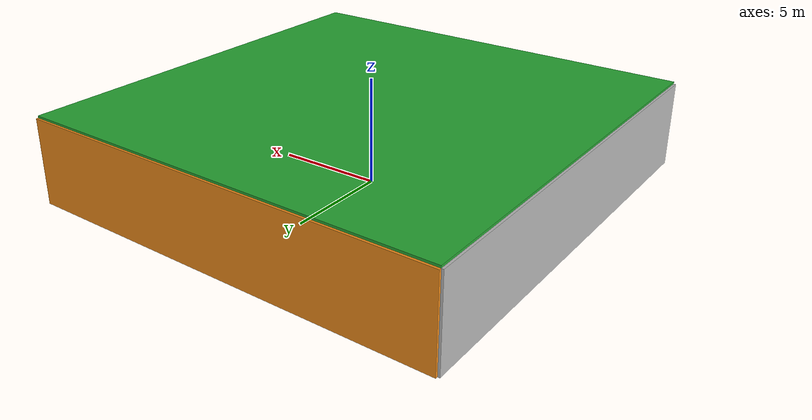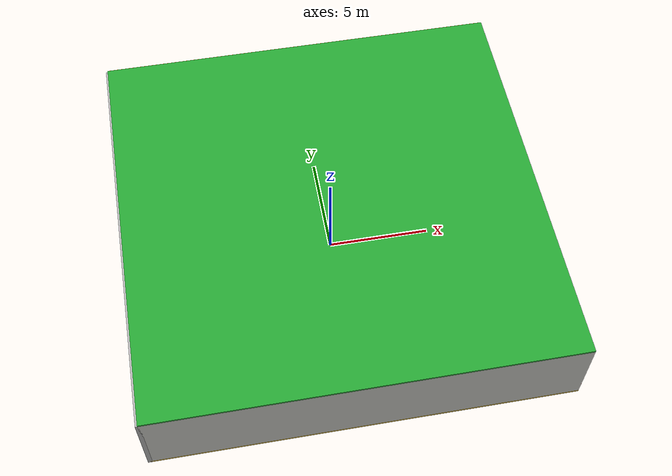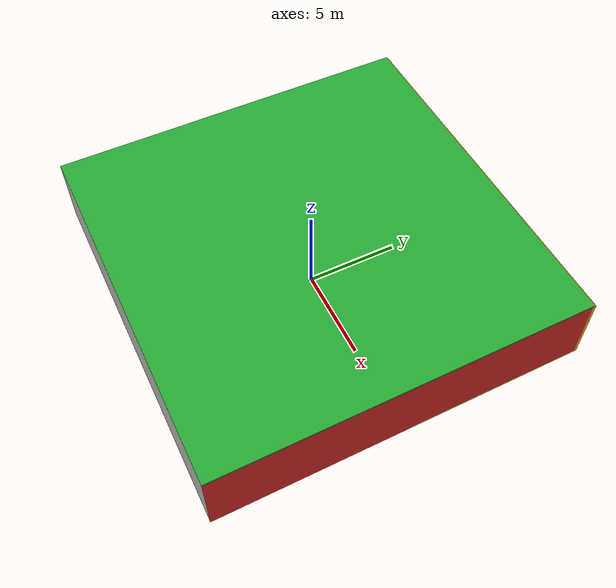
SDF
<sdf version="1.4">
 <world name="default">
  <physics type="ode">
   <max_step_size>0.001</max_step_size>
   <real_time_factor>1</real_time_factor>
   <real_time_update_rate>1000</real_time_update_rate>
   <gravity>0 0 -9.8</gravity>
  </physics>
  <scene><ambient>0.4 0.4 0.4 1</ambient><background>0.7 0.7 0.7 1</background><shadows>1</shadows></scene>
  <model name="Surrounding">
   <static>1</static>
   <link name="Ceiling">
    <collision name="Ceiling_Collision"><geometry><box><size>20 20 0.1</size></box></geometry></collision>
    <visual name="Ceiling_Visual">
     <geometry><box><size>20 20 0.1</size></box></geometry>
     <material>
      <script><uri>file://media/materials/scripts/gazebo.material</uri><name>Gazebo/Green</name></script>
     </material>
    </visual>
    <pose>0 0 4.05 0 0 0</pose>
   </link>
   <link name="Wall_South">
    <collision name="Wall_South_Collision">
     <geometry><box><size>20 0 4</size></box></geometry>
     <pose>0 0 2 0 -0 0</pose>
    </collision>
    <visual name="Wall_South_Visual">
     <pose>0 0 2 0 -0 0</pose>
     <geometry><box><size>20 0 4</size></box></geometry>
     <material>
      <script><uri>file://media/materials/scripts/gazebo.material</uri><name>Gazebo/CeilingTiled</name></script>
     </material>
    </visual>
    <velocity_decay><linear>0</linear><angular>0</angular></velocity_decay>
    <pose>0 -10 0 0 -0 0</pose>
   </link>
   <link name="Wall_East">
    <collision name="Wall_21_Collision">
     <geometry><box><size>20 0 4</size></box></geometry>
     <pose>0 0 2 0 -0 0</pose>
    </collision>
    <visual name="Wall_21_Visual">
     <pose>0 0 2 0 -0 0</pose>
     <geometry><box><size>20 0 4</size></box></geometry>
     <material>
      <script><uri>file://media/materials/scripts/gazebo.material</uri><name>Gazebo/Red</name></script>
     </material>
    </visual>
    <velocity_decay><linear>0</linear><angular>0</angular></velocity_decay>
    <pose>10 0 0 0 -0 1.5708</pose>
   </link>
   <link name="Wall_North">
    <collision name="Wall_22_Collision">
     <geometry><box><size>20 0.2 4</size></box></geometry>
     <pose>0 0 2 0 -0 0</pose>
    </collision>
    <visual name="Wall_22_Visual">
     <pose>0 0 2 0 -0 0</pose>
     <geometry><box><size>20 0.2 4</size></box></geometry>
     <material>
      <script><uri>file://media/materials/scripts/gazebo.material</uri><name>Gazebo/Orange</name></script>
     </material>
    </visual>
    <velocity_decay><linear>0</linear><angular>0</angular></velocity_decay>
    <pose>0 10 0 0 -0 0</pose>
   </link>
   <link name="Wall_West">
    <collision name="Wall_23_Collision">
     <geometry><box><size>20 0.2 4</size></box></geometry>
     <pose>0 0 2 0 -0 0</pose>
    </collision>
    <visual name="Wall_23_Visual">
     <pose>0 0 2 0 -0 0</pose>
     <geometry><box><size>20 0.2 4</size></box></geometry>
     <material>
      <script><uri>file://media/materials/scripts/gazebo.material</uri><name>Gazebo/JointAnchor</name></script>
     </material>
    </visual>
    <velocity_decay><linear>0</linear><angular>0</angular></velocity_decay>
    <pose>-10 0 0 0 0 -1.5708</pose>
   </link>
   <link name="Ground_link">
    <collision name="collision">
     <pose>0 0 .05 0 -0 0</pose>
     <geometry><box><size>20 20 0.1</size></box></geometry>
    </collision>
    <visual name="visual">
     <pose>0 0 .05 0 -0 0</pose>
     <geometry><box><size>20 20 0.1</size></box></geometry>
     <material>
      <script><uri>file://media/materials/scripts/gazebo.material</uri><name>Gazebo/Gold</name></script>
     </material>
    </visual>
   </link>
   <static>1</static>
  </model>
  <spherical_coordinates>
   <surface_model>EARTH_WGS84</surface_model>
   <latitude_deg>0</latitude_deg>
   <longitude_deg>0</longitude_deg>
   <elevation>0</elevation>
   <heading_deg>0</heading_deg>
  </spherical_coordinates>
  <light name="lightball_0" type="diffuse">
   <diffuse>0.8 0.8 0.8 1</diffuse>
   <specular>0.2 0.2 0.2 1</specular>
   <attenuation>
    <range>100</range>
    <constant>0.7</constant>
    <linear>0.01</linear>
    <quadratic>0.001</quadratic>
   </attenuation>
   <direction>-0.5 0.1 -0.9</direction>
   <pose>-1.08843800539 8.74223111304 3.23767416487 0 0 0</pose>
  </light>
  <light name="lightball_1" type="diffuse">
   <diffuse>0.8 0.8 0.8 1</diffuse>
   <specular>0.2 0.2 0.2 1</specular>
   <attenuation>
    <range>100</range>
    <constant>0.7</constant>
    <linear>0.01</linear>
    <quadratic>0.001</quadratic>
   </attenuation>
   <direction>-0.5 0.1 -0.9</direction>
   <pose>6.15483667516 -5.9907845441 2.42426563797 0 0 0</pose>
  </light>
  <include><uri>model://cabinet</uri><pose>-4.94840054 -2.06437012719 0 0 0 0.881250627762</pose></include>
  <include><uri>model://cabinet</uri><pose>-1.15261555318 7.60342854383 0 0 0 1.64184993869</pose></include>
  <include><uri>model://cabinet</uri><pose>4.0540780674 7.49072056031 0 0 0 2.64977676994</pose></include>
  <include><uri>model://cabinet</uri><pose>7.24439767711 4.9037217122 0 0 0 2.73659162273</pose></include>
 </world>
</sdf>

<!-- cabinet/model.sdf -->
<sdf version="1.5">
  <model name="cabinet">
    <static>true</static>
    <link name="cabinet_bottom_plate">
      <inertial>
        <pose>0 0 -1 0 0 0</pose>
        <inertia>
          <ixx>2.050000</ixx>
          <ixy>0</ixy>
          <ixz>0</ixz>
          <iyy>2.050000</iyy>
          <iyz>0</iyz>
          <izz>2.050000</izz>
        </inertia>
        <mass>25.000000</mass>
      </inertial>
      <collision name="cabinet_bottom_plate_geom">
        <pose>0 0 0.010000 0 0 0</pose>
        <geometry>
          <box>
            <size>0.450000 0.450000 0.020000</size>
          </box>
        </geometry>
      </collision>
      <visual name="cabinet_bottom_plate_geom_visual">
        <pose>0 0 0.010000 0 0 0</pose>
        <geometry>
          <box>
            <size>0.450000 0.450000 0.020000</size>
          </box>
        </geometry>
        <material>
          <script>
            <uri>model://media/materials/scripts/gazebo.material</uri>
            <name>Gazebo/Wood</name>
          </script>
        </material>
      </visual>
      <collision name="cabinet_bottom_plate_geom_cabinet_back_plate">
        <pose>0.235000 0 0.510000 0 0 0</pose>
        <geometry>
          <box>
            <size>0.020000 0.450000 1.020000</size>
          </box>
        </geometry>
      </collision>
      <visual name="cabinet_bottom_plate_geom_cabinet_back_plate_visual">
        <pose>0.235000 0 0.510000 0 0 0</pose>
        <geometry>
          <box>
            <size>0.020000 0.450000 1.020000</size>
          </box>
        </geometry>
        <material>
          <script>
            <uri>model://media/materials/scripts/gazebo.material</uri>
            <name>Gazebo/Wood</name>
          </script>
        </material>
      </visual>
      <collision name="cabinet_bottom_plate_geom_cabinet_left_plate">
        <pose>0 0.235000 0.510000 0 0 0</pose>
        <geometry>
          <box>
            <size>0.450000 0.020000 1.020000</size>
          </box>
        </geometry>
      </collision>
      <visual name="cabinet_bottom_plate_geom_cabinet_left_plate_visual">
        <pose>0 0.235000 0.510000 0 0 0</pose>
        <geometry>
          <box>
            <size>0.450000 0.020000 1.020000</size>
          </box>
        </geometry>
        <material>
          <script>
            <uri>model://media/materials/scripts/gazebo.material</uri>
            <name>Gazebo/Wood</name>
          </script>
        </material>
      </visual>
      <collision name="cabinet_bottom_plate_geom_cabinet_middle_plate">
        <pose>0 0 0.510000 0 0 0</pose>
        <geometry>
          <box>
            <size>0.450000 0.450000 0.020000</size>
          </box>
        </geometry>
      </collision>
      <visual name="cabinet_bottom_plate_geom_cabinet_middle_plate_visual">
        <pose>0 0 0.510000 0 0 0</pose>
        <geometry>
          <box>
            <size>0.450000 0.450000 0.020000</size>
          </box>
        </geometry>
        <material>
          <script>
            <uri>model://media/materials/scripts/gazebo.material</uri>
            <name>Gazebo/Wood</name>
          </script>
        </material>
      </visual>
      <collision name="cabinet_bottom_plate_geom_cabinet_right_plate">
        <pose>0 -0.235000 0.510000 0 0 0</pose>
        <geometry>
          <box>
            <size>0.450000 0.020000 1.020000</size>
          </box>
        </geometry>
      </collision>
      <visual name="cabinet_bottom_plate_geom_cabinet_right_plate_visual">
        <pose>0 -0.235000 0.510000 0 0 0</pose>
        <geometry>
          <box>
            <size>0.450000 0.020000 1.020000</size>
          </box>
        </geometry>
        <material>
          <script>
            <uri>model://media/materials/scripts/gazebo.material</uri>
            <name>Gazebo/Wood</name>
          </script>
        </material>
      </visual>
      <collision name="cabinet_bottom_plate_geom_cabinet_top_plate">
        <pose>0 0 1.010000 0 0 0</pose>
        <geometry>
          <box>
            <size>0.450000 0.450000 0.020000</size>
          </box>
        </geometry>
      </collision>
      <visual name="cabinet_bottom_plate_geom_cabinet_top_plate_visual">
        <pose>0 0 1.010000 0 0 0</pose>
        <geometry>
          <box>
            <size>0.450000 0.450000 0.020000</size>
          </box>
        </geometry>
        <material>
          <script>
            <uri>model://media/materials/scripts/gazebo.material</uri>
            <name>Gazebo/Wood</name>
          </script>
        </material>
      </visual>
    </link>
  </model>
</sdf>
